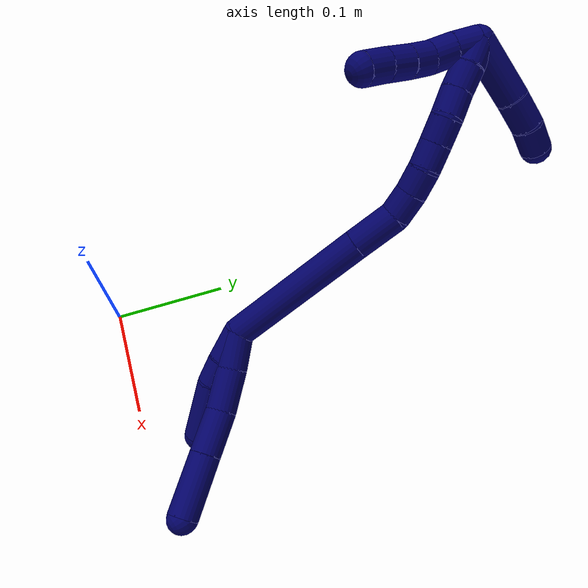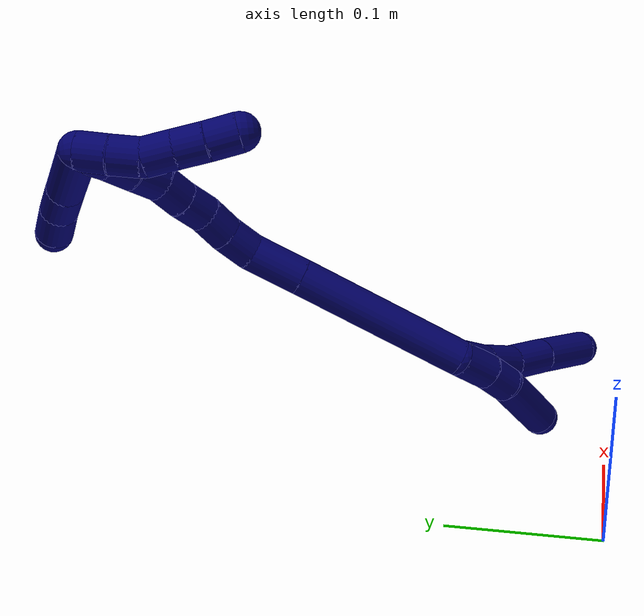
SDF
<sdf version="1.7">
 <world name="default">
  <model name="photoneo_s_sensor">
   <static>1</static>
   <pose>0 0 2 1.57079 1.57079 3.14159</pose>
   <link name="link">
    <inertial><mass>0.1</mass></inertial>
    <sensor name="sensor" type="depth">
     <update_rate>30</update_rate>
     <camera>
      <horizontal_fov>1.22</horizontal_fov>
      <image><width>1920</width><height>1200</height><format>B8G8R8</format></image>
      <clip><near>0.1</near><far>4</far></clip>
      <depth_camera><output>points</output></depth_camera>
     </camera>
     <plugin name="camera_plugin" filename="libgazebo_ros_depth_camera.so">
      <baseline>0.2</baseline>
      <alwaysOn>1</alwaysOn>
      <updateRate>0.0</updateRate>
      <cameraName>camera_ir</cameraName>
      <imageTopicName>/camera/color/image_raw</imageTopicName>
      <cameraInfoTopicName>/camera/color/camera_info</cameraInfoTopicName>
      <depthImageTopicName>/camera/depth/image_raw</depthImageTopicName>
      <depthImageCameraInfoTopicName>/camera/depth/camera_info</depthImageCameraInfoTopicName>
      <pointCloudTopicName>/camera/depth/points</pointCloudTopicName>
      <frameName>fr_optical</frameName>
      <pointCloudCutoff>0.1</pointCloudCutoff>
      <pointCloudCutoffMax>2.0</pointCloudCutoffMax>
      <distortionK1>0</distortionK1>
      <distortionK2>0</distortionK2>
      <distortionK3>0</distortionK3>
      <distortionT1>0</distortionT1>
      <distortionT2>0</distortionT2>
      <CxPrime>0</CxPrime>
      <Cx>0</Cx>
      <Cy>0</Cy>
      <focalLength>0</focalLength>
      <hackBaseline>0</hackBaseline>
     </plugin>
    </sensor>
   </link>
  </model>
  <model name="bin">
   <static>1</static>
   <link name="bottom">
    <collision name="collision-bottom">
     <pose>0 0 -0.01 0 -0 0</pose>
     <geometry><box><size>0.8 0.6 0.02</size></box></geometry>
     <surface>
      <friction><ode><mu>100</mu><mu2>100</mu2></ode></friction>
      <contact><collide_bitmask>65535</collide_bitmask></contact>
     </surface>
    </collision>
   </link>
   <link name="west_wall">
    <collision name="collision-west_wall">
     <pose>-0.41 0 0.1 0 -0 0</pose>
     <geometry><box><size>0.02 0.6 0.2</size></box></geometry>
     <surface>
      <friction><ode><mu>100</mu><mu2>100</mu2></ode></friction>
      <contact><collide_bitmask>65535</collide_bitmask></contact>
     </surface>
    </collision>
   </link>
   <link name="east_wall">
    <collision name="collision-east_wall">
     <pose>0.41 0 0.1 0 -0 0</pose>
     <geometry><box><size>0.02 0.6 0.2</size></box></geometry>
     <surface>
      <friction><ode><mu>100</mu><mu2>100</mu2></ode></friction>
      <contact><collide_bitmask>65535</collide_bitmask></contact>
     </surface>
    </collision>
   </link>
   <link name="south_wall">
    <collision name="collision-south_wall">
     <pose>0 -0.31 0.1 0 -0 0</pose>
     <geometry><box><size>0.8 0.02 0.2</size></box></geometry>
     <surface>
      <friction><ode><mu>100</mu><mu2>100</mu2></ode></friction>
      <contact><collide_bitmask>65535</collide_bitmask></contact>
     </surface>
    </collision>
   </link>
   <link name="north_wall">
    <collision name="collision-north_wall">
     <pose>0 0.31 0.1 0 -0 0</pose>
     <geometry><box><size>0.8 0.02 0.2</size></box></geometry>
     <surface>
      <friction><ode><mu>100</mu><mu2>100</mu2></ode></friction>
      <contact><collide_bitmask>65535</collide_bitmask></contact>
     </surface>
    </collision>
   </link>
  </model>
  <model name="7">
   <static>0</static>
   <link name="7">
    <collision name="collision-cylinder-e_1_2_8">
     <pose>0.002752 -0.011122 -0.009877 2.29694 0.182966 0.402771</pose>
     <geometry><cylinder><radius>0.0125</radius><length>0.030255</length></cylinder></geometry>
     <surface>
      <friction><ode><mu>1.16</mu><mu2>1.16</mu2><slip1>0</slip1><slip2>0</slip2></ode></friction>
      <contact><ode><kp>1e+06</kp><kd>1</kd><max_vel>0</max_vel><min_depth>0.001</min_depth></ode></contact>
     </surface>
    </collision>
    <visual name="visual-cylinder-e_1_2_8">
     <pose>0.002752 -0.011122 -0.009877 2.29694 0.182966 0.402771</pose>
     <geometry><cylinder><radius>0.0125</radius><length>0.030255</length></cylinder></geometry>
     <material><ambient>0.003922 0 0.403922 1</ambient></material>
    </visual>
    <collision name="collision-cylinder-e_2_8_9">
     <pose>0.007378 -0.034275 -0.032307 2.37745 0.107315 0.265757</pose>
     <geometry><cylinder><radius>0.0125</radius><length>0.034976</length></cylinder></geometry>
     <surface>
      <friction><ode><mu>1.16</mu><mu2>1.16</mu2><slip1>0</slip1><slip2>0</slip2></ode></friction>
      <contact><ode><kp>1e+06</kp><kd>1</kd><max_vel>0</max_vel><min_depth>0.001</min_depth></ode></contact>
     </surface>
    </collision>
    <visual name="visual-cylinder-e_2_8_9">
     <pose>0.007378 -0.034275 -0.032307 2.37745 0.107315 0.265757</pose>
     <geometry><cylinder><radius>0.0125</radius><length>0.034976</length></cylinder></geometry>
     <material><ambient>0.003922 0 0.403922 1</ambient></material>
    </visual>
    <collision name="collision-cylinder-e_3_9_10">
     <pose>0.00843 -0.056996 -0.059139 2.49896 -0.045979 -0.137943</pose>
     <geometry><cylinder><radius>0.0125</radius><length>0.035712</length></cylinder></geometry>
     <surface>
      <friction><ode><mu>1.16</mu><mu2>1.16</mu2><slip1>0</slip1><slip2>0</slip2></ode></friction>
      <contact><ode><kp>1e+06</kp><kd>1</kd><max_vel>0</max_vel><min_depth>0.001</min_depth></ode></contact>
     </surface>
    </collision>
    <visual name="visual-cylinder-e_3_9_10">
     <pose>0.00843 -0.056996 -0.059139 2.49896 -0.045979 -0.137943</pose>
     <geometry><cylinder><radius>0.0125</radius><length>0.035712</length></cylinder></geometry>
     <material><ambient>0.003922 0 0.403922 1</ambient></material>
    </visual>
    <collision name="collision-cylinder-e_4_10_6">
     <pose>0.007052 -0.082571 -0.092906 2.48929 -0.022748 -0.067232</pose>
     <geometry><cylinder><radius>0.0125</radius><length>0.049058</length></cylinder></geometry>
     <surface>
      <friction><ode><mu>1.16</mu><mu2>1.16</mu2><slip1>0</slip1><slip2>0</slip2></ode></friction>
      <contact><ode><kp>1e+06</kp><kd>1</kd><max_vel>0</max_vel><min_depth>0.001</min_depth></ode></contact>
     </surface>
    </collision>
    <visual name="visual-cylinder-e_4_10_6">
     <pose>0.007052 -0.082571 -0.092906 2.48929 -0.022748 -0.067232</pose>
     <geometry><cylinder><radius>0.0125</radius><length>0.049058</length></cylinder></geometry>
     <material><ambient>0.003922 0 0.403922 1</ambient></material>
    </visual>
    <collision name="collision-cylinder-e_1_2_11">
     <pose>0.006022 -0.006432 -0.010347 2.58543 0.459109 1.37189</pose>
     <geometry><cylinder><radius>0.0125</radius><length>0.02718</length></cylinder></geometry>
     <surface>
      <friction><ode><mu>1.16</mu><mu2>1.16</mu2><slip1>0</slip1><slip2>0</slip2></ode></friction>
      <contact><ode><kp>1e+06</kp><kd>1</kd><max_vel>0</max_vel><min_depth>0.001</min_depth></ode></contact>
     </surface>
    </collision>
    <visual name="visual-cylinder-e_1_2_11">
     <pose>0.006022 -0.006432 -0.010347 2.58543 0.459109 1.37189</pose>
     <geometry><cylinder><radius>0.0125</radius><length>0.02718</length></cylinder></geometry>
     <material><ambient>0.003922 0 0.403922 1</ambient></material>
    </visual>
    <collision name="collision-cylinder-e_2_11_12">
     <pose>0.017615 -0.018301 -0.028169 2.51268 0.542296 1.41446</pose>
     <geometry><cylinder><radius>0.0125</radius><length>0.021585</length></cylinder></geometry>
     <surface>
      <friction><ode><mu>1.16</mu><mu2>1.16</mu2><slip1>0</slip1><slip2>0</slip2></ode></friction>
      <contact><ode><kp>1e+06</kp><kd>1</kd><max_vel>0</max_vel><min_depth>0.001</min_depth></ode></contact>
     </surface>
    </collision>
    <visual name="visual-cylinder-e_2_11_12">
     <pose>0.017615 -0.018301 -0.028169 2.51268 0.542296 1.41446</pose>
     <geometry><cylinder><radius>0.0125</radius><length>0.021585</length></cylinder></geometry>
     <material><ambient>0.003922 0 0.403922 1</ambient></material>
    </visual>
    <collision name="collision-cylinder-e_3_12_5">
     <pose>0.037172 -0.03973 -0.049959 2.30094 0.577594 1.1733</pose>
     <geometry><cylinder><radius>0.0125</radius><length>0.051235</length></cylinder></geometry>
     <surface>
      <friction><ode><mu>1.16</mu><mu2>1.16</mu2><slip1>0</slip1><slip2>0</slip2></ode></friction>
      <contact><ode><kp>1e+06</kp><kd>1</kd><max_vel>0</max_vel><min_depth>0.001</min_depth></ode></contact>
     </surface>
    </collision>
    <visual name="visual-cylinder-e_3_12_5">
     <pose>0.037172 -0.03973 -0.049959 2.30094 0.577594 1.1733</pose>
     <geometry><cylinder><radius>0.0125</radius><length>0.051235</length></cylinder></geometry>
     <material><ambient>0.003922 0 0.403922 1</ambient></material>
    </visual>
    <collision name="collision-cylinder-e_1_2_13">
     <pose>-0.033421 0.004246 0.050131 -0.084488 -0.586364 0.025519</pose>
     <geometry><cylinder><radius>0.0125</radius><length>0.120798</length></cylinder></geometry>
     <surface>
      <friction><ode><mu>1.16</mu><mu2>1.16</mu2><slip1>0</slip1><slip2>0</slip2></ode></friction>
      <contact><ode><kp>1e+06</kp><kd>1</kd><max_vel>0</max_vel><min_depth>0.001</min_depth></ode></contact>
     </surface>
    </collision>
    <visual name="visual-cylinder-e_1_2_13">
     <pose>-0.033421 0.004246 0.050131 -0.084488 -0.586364 0.025519</pose>
     <geometry><cylinder><radius>0.0125</radius><length>0.120798</length></cylinder></geometry>
     <material><ambient>0.003922 0 0.403922 1</ambient></material>
    </visual>
    <collision name="collision-cylinder-e_2_13_14">
     <pose>-0.076928 0.009607 0.115694 -0.072215 -0.577673 0.021467</pose>
     <geometry><cylinder><radius>0.0125</radius><length>0.03694</length></cylinder></geometry>
     <surface>
      <friction><ode><mu>1.16</mu><mu2>1.16</mu2><slip1>0</slip1><slip2>0</slip2></ode></friction>
      <contact><ode><kp>1e+06</kp><kd>1</kd><max_vel>0</max_vel><min_depth>0.001</min_depth></ode></contact>
     </surface>
    </collision>
    <visual name="visual-cylinder-e_2_13_14">
     <pose>-0.076928 0.009607 0.115694 -0.072215 -0.577673 0.021467</pose>
     <geometry><cylinder><radius>0.0125</radius><length>0.03694</length></cylinder></geometry>
     <material><ambient>0.003922 0 0.403922 1</ambient></material>
    </visual>
    <collision name="collision-cylinder-e_3_14_15">
     <pose>-0.093569 0.014718 0.138707 -0.484934 -0.652986 0.167109</pose>
     <geometry><cylinder><radius>0.0125</radius><length>0.021576</length></cylinder></geometry>
     <surface>
      <friction><ode><mu>1.16</mu><mu2>1.16</mu2><slip1>0</slip1><slip2>0</slip2></ode></friction>
      <contact><ode><kp>1e+06</kp><kd>1</kd><max_vel>0</max_vel><min_depth>0.001</min_depth></ode></contact>
     </surface>
    </collision>
    <visual name="visual-cylinder-e_3_14_15">
     <pose>-0.093569 0.014718 0.138707 -0.484934 -0.652986 0.167109</pose>
     <geometry><cylinder><radius>0.0125</radius><length>0.021576</length></cylinder></geometry>
     <material><ambient>0.003922 0 0.403922 1</ambient></material>
    </visual>
    <collision name="collision-cylinder-e_4_15_16">
     <pose>-0.106727 0.023385 0.152411 -0.651768 -0.708745 0.248773</pose>
     <geometry><cylinder><radius>0.0125</radius><length>0.020292</length></cylinder></geometry>
     <surface>
      <friction><ode><mu>1.16</mu><mu2>1.16</mu2><slip1>0</slip1><slip2>0</slip2></ode></friction>
      <contact><ode><kp>1e+06</kp><kd>1</kd><max_vel>0</max_vel><min_depth>0.001</min_depth></ode></contact>
     </surface>
    </collision>
    <visual name="visual-cylinder-e_4_15_16">
     <pose>-0.106727 0.023385 0.152411 -0.651768 -0.708745 0.248773</pose>
     <geometry><cylinder><radius>0.0125</radius><length>0.020292</length></cylinder></geometry>
     <material><ambient>0.003922 0 0.403922 1</ambient></material>
    </visual>
    <collision name="collision-cylinder-e_5_16_17">
     <pose>-0.11819 0.033587 0.165319 -0.683927 -0.506858 0.18386</pose>
     <geometry><cylinder><radius>0.0125</radius><length>0.020021</length></cylinder></geometry>
     <surface>
      <friction><ode><mu>1.16</mu><mu2>1.16</mu2><slip1>0</slip1><slip2>0</slip2></ode></friction>
      <contact><ode><kp>1e+06</kp><kd>1</kd><max_vel>0</max_vel><min_depth>0.001</min_depth></ode></contact>
     </surface>
    </collision>
    <visual name="visual-cylinder-e_5_16_17">
     <pose>-0.11819 0.033587 0.165319 -0.683927 -0.506858 0.18386</pose>
     <geometry><cylinder><radius>0.0125</radius><length>0.020021</length></cylinder></geometry>
     <material><ambient>0.003922 0 0.403922 1</ambient></material>
    </visual>
    <collision name="collision-cylinder-e_6_17_18">
     <pose>-0.12853 0.044737 0.178318 -0.735209 -0.579157 0.228491</pose>
     <geometry><cylinder><radius>0.0125</radius><length>0.020026</length></cylinder></geometry>
     <surface>
      <friction><ode><mu>1.16</mu><mu2>1.16</mu2><slip1>0</slip1><slip2>0</slip2></ode></friction>
      <contact><ode><kp>1e+06</kp><kd>1</kd><max_vel>0</max_vel><min_depth>0.001</min_depth></ode></contact>
     </surface>
    </collision>
    <visual name="visual-cylinder-e_6_17_18">
     <pose>-0.12853 0.044737 0.178318 -0.735209 -0.579157 0.228491</pose>
     <geometry><cylinder><radius>0.0125</radius><length>0.020026</length></cylinder></geometry>
     <material><ambient>0.003922 0 0.403922 1</ambient></material>
    </visual>
    <collision name="collision-cylinder-e_7_18_19">
     <pose>-0.137242 0.05648 0.191982 -0.687919 -0.323485 0.11676</pose>
     <geometry><cylinder><radius>0.0125</radius><length>0.020339</length></cylinder></geometry>
     <surface>
      <friction><ode><mu>1.16</mu><mu2>1.16</mu2><slip1>0</slip1><slip2>0</slip2></ode></friction>
      <contact><ode><kp>1e+06</kp><kd>1</kd><max_vel>0</max_vel><min_depth>0.001</min_depth></ode></contact>
     </surface>
    </collision>
    <visual name="visual-cylinder-e_7_18_19">
     <pose>-0.137242 0.05648 0.191982 -0.687919 -0.323485 0.11676</pose>
     <geometry><cylinder><radius>0.0125</radius><length>0.020339</length></cylinder></geometry>
     <material><ambient>0.003922 0 0.403922 1</ambient></material>
    </visual>
    <collision name="collision-cylinder-e_8_19_20">
     <pose>-0.143997 0.06807 0.207029 -0.623784 -0.35983 0.117149</pose>
     <geometry><cylinder><radius>0.0125</radius><length>0.020002</length></cylinder></geometry>
     <surface>
      <friction><ode><mu>1.16</mu><mu2>1.16</mu2><slip1>0</slip1><slip2>0</slip2></ode></friction>
      <contact><ode><kp>1e+06</kp><kd>1</kd><max_vel>0</max_vel><min_depth>0.001</min_depth></ode></contact>
     </surface>
    </collision>
    <visual name="visual-cylinder-e_8_19_20">
     <pose>-0.143997 0.06807 0.207029 -0.623784 -0.35983 0.117149</pose>
     <geometry><cylinder><radius>0.0125</radius><length>0.020002</length></cylinder></geometry>
     <material><ambient>0.003922 0 0.403922 1</ambient></material>
    </visual>
    <collision name="collision-cylinder-e_9_20_1">
     <pose>-0.150286 0.079292 0.222326 -0.641832 -0.280333 0.093731</pose>
     <geometry><cylinder><radius>0.0125</radius><length>0.020006</length></cylinder></geometry>
     <surface>
      <friction><ode><mu>1.16</mu><mu2>1.16</mu2><slip1>0</slip1><slip2>0</slip2></ode></friction>
      <contact><ode><kp>1e+06</kp><kd>1</kd><max_vel>0</max_vel><min_depth>0.001</min_depth></ode></contact>
     </surface>
    </collision>
    <visual name="visual-cylinder-e_9_20_1">
     <pose>-0.150286 0.079292 0.222326 -0.641832 -0.280333 0.093731</pose>
     <geometry><cylinder><radius>0.0125</radius><length>0.020006</length></cylinder></geometry>
     <material><ambient>0.003922 0 0.403922 1</ambient></material>
    </visual>
    <collision name="collision-cylinder-e_1_1_21">
     <pose>-0.150548 0.087598 0.220687 -2.87496 0.253268 -1.51881</pose>
     <geometry><cylinder><radius>0.0125</radius><length>0.02</length></cylinder></geometry>
     <surface>
      <friction><ode><mu>1.16</mu><mu2>1.16</mu2><slip1>0</slip1><slip2>0</slip2></ode></friction>
      <contact><ode><kp>1e+06</kp><kd>1</kd><max_vel>0</max_vel><min_depth>0.001</min_depth></ode></contact>
     </surface>
    </collision>
    <visual name="visual-cylinder-e_1_1_21">
     <pose>-0.150548 0.087598 0.220687 -2.87496 0.253268 -1.51881</pose>
     <geometry><cylinder><radius>0.0125</radius><length>0.02</length></cylinder></geometry>
     <material><ambient>0.003922 0 0.403922 1</ambient></material>
    </visual>
    <collision name="collision-cylinder-e_2_21_22">
     <pose>-0.145825 0.091809 0.201739 -2.97043 0.223562 -1.83641</pose>
     <geometry><cylinder><radius>0.0125</radius><length>0.02</length></cylinder></geometry>
     <surface>
      <friction><ode><mu>1.16</mu><mu2>1.16</mu2><slip1>0</slip1><slip2>0</slip2></ode></friction>
      <contact><ode><kp>1e+06</kp><kd>1</kd><max_vel>0</max_vel><min_depth>0.001</min_depth></ode></contact>
     </surface>
    </collision>
    <visual name="visual-cylinder-e_2_21_22">
     <pose>-0.145825 0.091809 0.201739 -2.97043 0.223562 -1.83641</pose>
     <geometry><cylinder><radius>0.0125</radius><length>0.02</length></cylinder></geometry>
     <material><ambient>0.003922 0 0.403922 1</ambient></material>
    </visual>
    <collision name="collision-cylinder-e_3_22_23">
     <pose>-0.144717 0.095214 0.182347 -2.96526 -0.111144 1.12342</pose>
     <geometry><cylinder><radius>0.0125</radius><length>0.02</length></cylinder></geometry>
     <surface>
      <friction><ode><mu>1.16</mu><mu2>1.16</mu2><slip1>0</slip1><slip2>0</slip2></ode></friction>
      <contact><ode><kp>1e+06</kp><kd>1</kd><max_vel>0</max_vel><min_depth>0.001</min_depth></ode></contact>
     </surface>
    </collision>
    <visual name="visual-cylinder-e_3_22_23">
     <pose>-0.144717 0.095214 0.182347 -2.96526 -0.111144 1.12342</pose>
     <geometry><cylinder><radius>0.0125</radius><length>0.02</length></cylinder></geometry>
     <material><ambient>0.003922 0 0.403922 1</ambient></material>
    </visual>
    <collision name="collision-cylinder-e_4_23_24">
     <pose>-0.146768 0.099244 0.162873 -2.90979 -0.094345 0.770449</pose>
     <geometry><cylinder><radius>0.0125</radius><length>0.02</length></cylinder></geometry>
     <surface>
      <friction><ode><mu>1.16</mu><mu2>1.16</mu2><slip1>0</slip1><slip2>0</slip2></ode></friction>
      <contact><ode><kp>1e+06</kp><kd>1</kd><max_vel>0</max_vel><min_depth>0.001</min_depth></ode></contact>
     </surface>
    </collision>
    <visual name="visual-cylinder-e_4_23_24">
     <pose>-0.146768 0.099244 0.162873 -2.90979 -0.094345 0.770449</pose>
     <geometry><cylinder><radius>0.0125</radius><length>0.02</length></cylinder></geometry>
     <material><ambient>0.003922 0 0.403922 1</ambient></material>
    </visual>
    <collision name="collision-cylinder-e_5_24_4">
     <pose>-0.149073 0.103246 0.143427 -2.96761 -0.136718 1.33111</pose>
     <geometry><cylinder><radius>0.0125</radius><length>0.02</length></cylinder></geometry>
     <surface>
      <friction><ode><mu>1.16</mu><mu2>1.16</mu2><slip1>0</slip1><slip2>0</slip2></ode></friction>
      <contact><ode><kp>1e+06</kp><kd>1</kd><max_vel>0</max_vel><min_depth>0.001</min_depth></ode></contact>
     </surface>
    </collision>
    <visual name="visual-cylinder-e_5_24_4">
     <pose>-0.149073 0.103246 0.143427 -2.96761 -0.136718 1.33111</pose>
     <geometry><cylinder><radius>0.0125</radius><length>0.02</length></cylinder></geometry>
     <material><ambient>0.003922 0 0.403922 1</ambient></material>
    </visual>
    <collision name="collision-cylinder-e_1_1_25">
     <pose>-0.14537 0.061863 0.23671 1.29011 0.308265 0.232747</pose>
     <geometry><cylinder><radius>0.0125</radius><length>0.050644</length></cylinder></geometry>
     <surface>
      <friction><ode><mu>1.16</mu><mu2>1.16</mu2><slip1>0</slip1><slip2>0</slip2></ode></friction>
      <contact><ode><kp>1e+06</kp><kd>1</kd><max_vel>0</max_vel><min_depth>0.001</min_depth></ode></contact>
     </surface>
    </collision>
    <visual name="visual-cylinder-e_1_1_25">
     <pose>-0.14537 0.061863 0.23671 1.29011 0.308265 0.232747</pose>
     <geometry><cylinder><radius>0.0125</radius><length>0.050644</length></cylinder></geometry>
     <material><ambient>0.003922 0 0.403922 1</ambient></material>
    </visual>
    <collision name="collision-cylinder-e_2_25_26">
     <pose>-0.132797 0.027165 0.247136 1.25656 0.383925 0.28054</pose>
     <geometry><cylinder><radius>0.0125</radius><length>0.026114</length></cylinder></geometry>
     <surface>
      <friction><ode><mu>1.16</mu><mu2>1.16</mu2><slip1>0</slip1><slip2>0</slip2></ode></friction>
      <contact><ode><kp>1e+06</kp><kd>1</kd><max_vel>0</max_vel><min_depth>0.001</min_depth></ode></contact>
     </surface>
    </collision>
    <visual name="visual-cylinder-e_2_25_26">
     <pose>-0.132797 0.027165 0.247136 1.25656 0.383925 0.28054</pose>
     <geometry><cylinder><radius>0.0125</radius><length>0.026114</length></cylinder></geometry>
     <material><ambient>0.003922 0 0.403922 1</ambient></material>
    </visual>
    <collision name="collision-cylinder-e_3_26_3">
     <pose>-0.121666 0.006398 0.254115 1.23425 0.566851 0.407614</pose>
     <geometry><cylinder><radius>0.0125</radius><length>0.023242</length></cylinder></geometry>
     <surface>
      <friction><ode><mu>1.16</mu><mu2>1.16</mu2><slip1>0</slip1><slip2>0</slip2></ode></friction>
      <contact><ode><kp>1e+06</kp><kd>1</kd><max_vel>0</max_vel><min_depth>0.001</min_depth></ode></contact>
     </surface>
    </collision>
    <visual name="visual-cylinder-e_3_26_3">
     <pose>-0.121666 0.006398 0.254115 1.23425 0.566851 0.407614</pose>
     <geometry><cylinder><radius>0.0125</radius><length>0.023242</length></cylinder></geometry>
     <material><ambient>0.003922 0 0.403922 1</ambient></material>
    </visual>
    <collision name="collision-sphere-3">
     <pose>-0.115426 -0.002856 0.257352 0 -0 0</pose>
     <geometry><sphere><radius>0.0125</radius></sphere></geometry>
     <surface>
      <friction><ode><mu>1.16</mu><mu2>1.16</mu2><slip1>0</slip1><slip2>0</slip2></ode></friction>
      <contact><ode><kp>1e+06</kp><kd>1</kd><max_vel>0</max_vel><min_depth>0.001</min_depth></ode></contact>
     </surface>
    </collision>
    <visual name="visual-sphere-3">
     <pose>-0.115426 -0.002856 0.257352 0 -0 0</pose>
     <geometry><sphere><radius>0.0125</radius></sphere></geometry>
     <material><ambient>0.003922 0 0.403922 1</ambient></material>
    </visual>
    <collision name="collision-sphere-26">
     <pose>-0.127906 0.015651 0.250877 0 -0 0</pose>
     <geometry><sphere><radius>0.0125</radius></sphere></geometry>
     <surface>
      <friction><ode><mu>1.16</mu><mu2>1.16</mu2><slip1>0</slip1><slip2>0</slip2></ode></friction>
      <contact><ode><kp>1e+06</kp><kd>1</kd><max_vel>0</max_vel><min_depth>0.001</min_depth></ode></contact>
     </surface>
    </collision>
    <visual name="visual-sphere-26">
     <pose>-0.127906 0.015651 0.250877 0 -0 0</pose>
     <geometry><sphere><radius>0.0125</radius></sphere></geometry>
     <material><ambient>0.003922 0 0.403922 1</ambient></material>
    </visual>
    <collision name="collision-sphere-25">
     <pose>-0.137688 0.038679 0.243394 0 -0 0</pose>
     <geometry><sphere><radius>0.0125</radius></sphere></geometry>
     <surface>
      <friction><ode><mu>1.16</mu><mu2>1.16</mu2><slip1>0</slip1><slip2>0</slip2></ode></friction>
      <contact><ode><kp>1e+06</kp><kd>1</kd><max_vel>0</max_vel><min_depth>0.001</min_depth></ode></contact>
     </surface>
    </collision>
    <visual name="visual-sphere-25">
     <pose>-0.137688 0.038679 0.243394 0 -0 0</pose>
     <geometry><sphere><radius>0.0125</radius></sphere></geometry>
     <material><ambient>0.003922 0 0.403922 1</ambient></material>
    </visual>
    <collision name="collision-sphere-4">
     <pose>-0.150436 0.104961 0.13367 0 -0 0</pose>
     <geometry><sphere><radius>0.0125</radius></sphere></geometry>
     <surface>
      <friction><ode><mu>1.16</mu><mu2>1.16</mu2><slip1>0</slip1><slip2>0</slip2></ode></friction>
      <contact><ode><kp>1e+06</kp><kd>1</kd><max_vel>0</max_vel><min_depth>0.001</min_depth></ode></contact>
     </surface>
    </collision>
    <visual name="visual-sphere-4">
     <pose>-0.150436 0.104961 0.13367 0 -0 0</pose>
     <geometry><sphere><radius>0.0125</radius></sphere></geometry>
     <material><ambient>0.003922 0 0.403922 1</ambient></material>
    </visual>
    <collision name="collision-sphere-24">
     <pose>-0.14771 0.101531 0.153184 0 -0 0</pose>
     <geometry><sphere><radius>0.0125</radius></sphere></geometry>
     <surface>
      <friction><ode><mu>1.16</mu><mu2>1.16</mu2><slip1>0</slip1><slip2>0</slip2></ode></friction>
      <contact><ode><kp>1e+06</kp><kd>1</kd><max_vel>0</max_vel><min_depth>0.001</min_depth></ode></contact>
     </surface>
    </collision>
    <visual name="visual-sphere-24">
     <pose>-0.14771 0.101531 0.153184 0 -0 0</pose>
     <geometry><sphere><radius>0.0125</radius></sphere></geometry>
     <material><ambient>0.003922 0 0.403922 1</ambient></material>
    </visual>
    <collision name="collision-sphere-23">
     <pose>-0.145826 0.096957 0.172562 0 -0 0</pose>
     <geometry><sphere><radius>0.0125</radius></sphere></geometry>
     <surface>
      <friction><ode><mu>1.16</mu><mu2>1.16</mu2><slip1>0</slip1><slip2>0</slip2></ode></friction>
      <contact><ode><kp>1e+06</kp><kd>1</kd><max_vel>0</max_vel><min_depth>0.001</min_depth></ode></contact>
     </surface>
    </collision>
    <visual name="visual-sphere-23">
     <pose>-0.145826 0.096957 0.172562 0 -0 0</pose>
     <geometry><sphere><radius>0.0125</radius></sphere></geometry>
     <material><ambient>0.003922 0 0.403922 1</ambient></material>
    </visual>
    <collision name="collision-sphere-22">
     <pose>-0.143608 0.09347 0.192131 0 -0 0</pose>
     <geometry><sphere><radius>0.0125</radius></sphere></geometry>
     <surface>
      <friction><ode><mu>1.16</mu><mu2>1.16</mu2><slip1>0</slip1><slip2>0</slip2></ode></friction>
      <contact><ode><kp>1e+06</kp><kd>1</kd><max_vel>0</max_vel><min_depth>0.001</min_depth></ode></contact>
     </surface>
    </collision>
    <visual name="visual-sphere-22">
     <pose>-0.143608 0.09347 0.192131 0 -0 0</pose>
     <geometry><sphere><radius>0.0125</radius></sphere></geometry>
     <material><ambient>0.003922 0 0.403922 1</ambient></material>
    </visual>
    <collision name="collision-sphere-21">
     <pose>-0.148042 0.090148 0.211348 0 -0 0</pose>
     <geometry><sphere><radius>0.0125</radius></sphere></geometry>
     <surface>
      <friction><ode><mu>1.16</mu><mu2>1.16</mu2><slip1>0</slip1><slip2>0</slip2></ode></friction>
      <contact><ode><kp>1e+06</kp><kd>1</kd><max_vel>0</max_vel><min_depth>0.001</min_depth></ode></contact>
     </surface>
    </collision>
    <visual name="visual-sphere-21">
     <pose>-0.148042 0.090148 0.211348 0 -0 0</pose>
     <geometry><sphere><radius>0.0125</radius></sphere></geometry>
     <material><ambient>0.003922 0 0.403922 1</ambient></material>
    </visual>
    <collision name="collision-sphere-1">
     <pose>-0.153053 0.085047 0.230026 0 -0 0</pose>
     <geometry><sphere><radius>0.0125</radius></sphere></geometry>
     <surface>
      <friction><ode><mu>1.16</mu><mu2>1.16</mu2><slip1>0</slip1><slip2>0</slip2></ode></friction>
      <contact><ode><kp>1e+06</kp><kd>1</kd><max_vel>0</max_vel><min_depth>0.001</min_depth></ode></contact>
     </surface>
    </collision>
    <visual name="visual-sphere-1">
     <pose>-0.153053 0.085047 0.230026 0 -0 0</pose>
     <geometry><sphere><radius>0.0125</radius></sphere></geometry>
     <material><ambient>0.003922 0 0.403922 1</ambient></material>
    </visual>
    <collision name="collision-sphere-11">
     <pose>0.012045 -0.012863 -0.020694 0 -0 0</pose>
     <geometry><sphere><radius>0.0125</radius></sphere></geometry>
     <surface>
      <friction><ode><mu>1.16</mu><mu2>1.16</mu2><slip1>0</slip1><slip2>0</slip2></ode></friction>
      <contact><ode><kp>1e+06</kp><kd>1</kd><max_vel>0</max_vel><min_depth>0.001</min_depth></ode></contact>
     </surface>
    </collision>
    <visual name="visual-sphere-11">
     <pose>0.012045 -0.012863 -0.020694 0 -0 0</pose>
     <geometry><sphere><radius>0.0125</radius></sphere></geometry>
     <material><ambient>0.003922 0 0.403922 1</ambient></material>
    </visual>
    <collision name="collision-sphere-6">
     <pose>0.006494 -0.097457 -0.112393 0 -0 0</pose>
     <geometry><sphere><radius>0.0125</radius></sphere></geometry>
     <surface>
      <friction><ode><mu>1.16</mu><mu2>1.16</mu2><slip1>0</slip1><slip2>0</slip2></ode></friction>
      <contact><ode><kp>1e+06</kp><kd>1</kd><max_vel>0</max_vel><min_depth>0.001</min_depth></ode></contact>
     </surface>
    </collision>
    <visual name="visual-sphere-6">
     <pose>0.006494 -0.097457 -0.112393 0 -0 0</pose>
     <geometry><sphere><radius>0.0125</radius></sphere></geometry>
     <material><ambient>0.003922 0 0.403922 1</ambient></material>
    </visual>
    <collision name="collision-sphere-10">
     <pose>0.00761 -0.067686 -0.073418 0 -0 0</pose>
     <geometry><sphere><radius>0.0125</radius></sphere></geometry>
     <surface>
      <friction><ode><mu>1.16</mu><mu2>1.16</mu2><slip1>0</slip1><slip2>0</slip2></ode></friction>
      <contact><ode><kp>1e+06</kp><kd>1</kd><max_vel>0</max_vel><min_depth>0.001</min_depth></ode></contact>
     </surface>
    </collision>
    <visual name="visual-sphere-10">
     <pose>0.00761 -0.067686 -0.073418 0 -0 0</pose>
     <geometry><sphere><radius>0.0125</radius></sphere></geometry>
     <material><ambient>0.003922 0 0.403922 1</ambient></material>
    </visual>
    <collision name="collision-sphere-9">
     <pose>0.009251 -0.046306 -0.04486 0 -0 0</pose>
     <geometry><sphere><radius>0.0125</radius></sphere></geometry>
     <surface>
      <friction><ode><mu>1.16</mu><mu2>1.16</mu2><slip1>0</slip1><slip2>0</slip2></ode></friction>
      <contact><ode><kp>1e+06</kp><kd>1</kd><max_vel>0</max_vel><min_depth>0.001</min_depth></ode></contact>
     </surface>
    </collision>
    <visual name="visual-sphere-9">
     <pose>0.009251 -0.046306 -0.04486 0 -0 0</pose>
     <geometry><sphere><radius>0.0125</radius></sphere></geometry>
     <material><ambient>0.003922 0 0.403922 1</ambient></material>
    </visual>
    <collision name="collision-sphere-2">
     <geometry><sphere><radius>0.0125</radius></sphere></geometry>
     <surface>
      <friction><ode><mu>1.16</mu><mu2>1.16</mu2><slip1>0</slip1><slip2>0</slip2></ode></friction>
      <contact><ode><kp>1e+06</kp><kd>1</kd><max_vel>0</max_vel><min_depth>0.001</min_depth></ode></contact>
     </surface>
    </collision>
    <visual name="visual-sphere-2">
     <geometry><sphere><radius>0.0125</radius></sphere></geometry>
     <material><ambient>0.003922 0 0.403922 1</ambient></material>
    </visual>
    <collision name="collision-sphere-19">
     <pose>-0.140475 0.062603 0.199432 0 -0 0</pose>
     <geometry><sphere><radius>0.0125</radius></sphere></geometry>
     <surface>
      <friction><ode><mu>1.16</mu><mu2>1.16</mu2><slip1>0</slip1><slip2>0</slip2></ode></friction>
      <contact><ode><kp>1e+06</kp><kd>1</kd><max_vel>0</max_vel><min_depth>0.001</min_depth></ode></contact>
     </surface>
    </collision>
    <visual name="visual-sphere-19">
     <pose>-0.140475 0.062603 0.199432 0 -0 0</pose>
     <geometry><sphere><radius>0.0125</radius></sphere></geometry>
     <material><ambient>0.003922 0 0.403922 1</ambient></material>
    </visual>
    <collision name="collision-sphere-8">
     <pose>0.005505 -0.022245 -0.019754 0 -0 0</pose>
     <geometry><sphere><radius>0.0125</radius></sphere></geometry>
     <surface>
      <friction><ode><mu>1.16</mu><mu2>1.16</mu2><slip1>0</slip1><slip2>0</slip2></ode></friction>
      <contact><ode><kp>1e+06</kp><kd>1</kd><max_vel>0</max_vel><min_depth>0.001</min_depth></ode></contact>
     </surface>
    </collision>
    <visual name="visual-sphere-8">
     <pose>0.005505 -0.022245 -0.019754 0 -0 0</pose>
     <geometry><sphere><radius>0.0125</radius></sphere></geometry>
     <material><ambient>0.003922 0 0.403922 1</ambient></material>
    </visual>
    <collision name="collision-sphere-12">
     <pose>0.023185 -0.023739 -0.035644 0 -0 0</pose>
     <geometry><sphere><radius>0.0125</radius></sphere></geometry>
     <surface>
      <friction><ode><mu>1.16</mu><mu2>1.16</mu2><slip1>0</slip1><slip2>0</slip2></ode></friction>
      <contact><ode><kp>1e+06</kp><kd>1</kd><max_vel>0</max_vel><min_depth>0.001</min_depth></ode></contact>
     </surface>
    </collision>
    <visual name="visual-sphere-12">
     <pose>0.023185 -0.023739 -0.035644 0 -0 0</pose>
     <geometry><sphere><radius>0.0125</radius></sphere></geometry>
     <material><ambient>0.003922 0 0.403922 1</ambient></material>
    </visual>
    <collision name="collision-sphere-5">
     <pose>0.05116 -0.055721 -0.064273 0 -0 0</pose>
     <geometry><sphere><radius>0.0125</radius></sphere></geometry>
     <surface>
      <friction><ode><mu>1.16</mu><mu2>1.16</mu2><slip1>0</slip1><slip2>0</slip2></ode></friction>
      <contact><ode><kp>1e+06</kp><kd>1</kd><max_vel>0</max_vel><min_depth>0.001</min_depth></ode></contact>
     </surface>
    </collision>
    <visual name="visual-sphere-5">
     <pose>0.05116 -0.055721 -0.064273 0 -0 0</pose>
     <geometry><sphere><radius>0.0125</radius></sphere></geometry>
     <material><ambient>0.003922 0 0.403922 1</ambient></material>
    </visual>
    <collision name="collision-sphere-13">
     <pose>-0.066842 0.008491 0.100261 0 -0 0</pose>
     <geometry><sphere><radius>0.0125</radius></sphere></geometry>
     <surface>
      <friction><ode><mu>1.16</mu><mu2>1.16</mu2><slip1>0</slip1><slip2>0</slip2></ode></friction>
      <contact><ode><kp>1e+06</kp><kd>1</kd><max_vel>0</max_vel><min_depth>0.001</min_depth></ode></contact>
     </surface>
    </collision>
    <visual name="visual-sphere-13">
     <pose>-0.066842 0.008491 0.100261 0 -0 0</pose>
     <geometry><sphere><radius>0.0125</radius></sphere></geometry>
     <material><ambient>0.003922 0 0.403922 1</ambient></material>
    </visual>
    <collision name="collision-sphere-14">
     <pose>-0.087014 0.010724 0.131127 0 -0 0</pose>
     <geometry><sphere><radius>0.0125</radius></sphere></geometry>
     <surface>
      <friction><ode><mu>1.16</mu><mu2>1.16</mu2><slip1>0</slip1><slip2>0</slip2></ode></friction>
      <contact><ode><kp>1e+06</kp><kd>1</kd><max_vel>0</max_vel><min_depth>0.001</min_depth></ode></contact>
     </surface>
    </collision>
    <visual name="visual-sphere-14">
     <pose>-0.087014 0.010724 0.131127 0 -0 0</pose>
     <geometry><sphere><radius>0.0125</radius></sphere></geometry>
     <material><ambient>0.003922 0 0.403922 1</ambient></material>
    </visual>
    <collision name="collision-sphere-15">
     <pose>-0.100123 0.018712 0.146288 0 -0 0</pose>
     <geometry><sphere><radius>0.0125</radius></sphere></geometry>
     <surface>
      <friction><ode><mu>1.16</mu><mu2>1.16</mu2><slip1>0</slip1><slip2>0</slip2></ode></friction>
      <contact><ode><kp>1e+06</kp><kd>1</kd><max_vel>0</max_vel><min_depth>0.001</min_depth></ode></contact>
     </surface>
    </collision>
    <visual name="visual-sphere-15">
     <pose>-0.100123 0.018712 0.146288 0 -0 0</pose>
     <geometry><sphere><radius>0.0125</radius></sphere></geometry>
     <material><ambient>0.003922 0 0.403922 1</ambient></material>
    </visual>
    <collision name="collision-sphere-16">
     <pose>-0.113331 0.028057 0.158535 0 -0 0</pose>
     <geometry><sphere><radius>0.0125</radius></sphere></geometry>
     <surface>
      <friction><ode><mu>1.16</mu><mu2>1.16</mu2><slip1>0</slip1><slip2>0</slip2></ode></friction>
      <contact><ode><kp>1e+06</kp><kd>1</kd><max_vel>0</max_vel><min_depth>0.001</min_depth></ode></contact>
     </surface>
    </collision>
    <visual name="visual-sphere-16">
     <pose>-0.113331 0.028057 0.158535 0 -0 0</pose>
     <geometry><sphere><radius>0.0125</radius></sphere></geometry>
     <material><ambient>0.003922 0 0.403922 1</ambient></material>
    </visual>
    <collision name="collision-sphere-17">
     <pose>-0.123049 0.039117 0.172102 0 -0 0</pose>
     <geometry><sphere><radius>0.0125</radius></sphere></geometry>
     <surface>
      <friction><ode><mu>1.16</mu><mu2>1.16</mu2><slip1>0</slip1><slip2>0</slip2></ode></friction>
      <contact><ode><kp>1e+06</kp><kd>1</kd><max_vel>0</max_vel><min_depth>0.001</min_depth></ode></contact>
     </surface>
    </collision>
    <visual name="visual-sphere-17">
     <pose>-0.123049 0.039117 0.172102 0 -0 0</pose>
     <geometry><sphere><radius>0.0125</radius></sphere></geometry>
     <material><ambient>0.003922 0 0.403922 1</ambient></material>
    </visual>
    <collision name="collision-sphere-18">
     <pose>-0.13401 0.050358 0.184533 0 -0 0</pose>
     <geometry><sphere><radius>0.0125</radius></sphere></geometry>
     <surface>
      <friction><ode><mu>1.16</mu><mu2>1.16</mu2><slip1>0</slip1><slip2>0</slip2></ode></friction>
      <contact><ode><kp>1e+06</kp><kd>1</kd><max_vel>0</max_vel><min_depth>0.001</min_depth></ode></contact>
     </surface>
    </collision>
    <visual name="visual-sphere-18">
     <pose>-0.13401 0.050358 0.184533 0 -0 0</pose>
     <geometry><sphere><radius>0.0125</radius></sphere></geometry>
     <material><ambient>0.003922 0 0.403922 1</ambient></material>
    </visual>
    <collision name="collision-sphere-20">
     <pose>-0.147518 0.073538 0.214627 0 -0 0</pose>
     <geometry><sphere><radius>0.0125</radius></sphere></geometry>
     <surface>
      <friction><ode><mu>1.16</mu><mu2>1.16</mu2><slip1>0</slip1><slip2>0</slip2></ode></friction>
      <contact><ode><kp>1e+06</kp><kd>1</kd><max_vel>0</max_vel><min_depth>0.001</min_depth></ode></contact>
     </surface>
    </collision>
    <visual name="visual-sphere-20">
     <pose>-0.147518 0.073538 0.214627 0 -0 0</pose>
     <geometry><sphere><radius>0.0125</radius></sphere></geometry>
     <material><ambient>0.003922 0 0.403922 1</ambient></material>
    </visual>
    <inertial>
     <pose>-0.066189 0.014175 0.089082 0 -0 0</pose>
     <mass>0.75</mass>
     <inertia>
      <ixx>0.000208</ixx>
      <ixy>0</ixy>
      <ixz>0</ixz>
      <iyy>0.000168</iyy>
      <iyz>0</iyz>
      <izz>9.9e-05</izz>
     </inertia>
    </inertial>
   </link>
   <pose>0.091557 0.102258 0.076534 1.7403 1.13421 -2.65076</pose>
  </model>
 </world>
</sdf>
